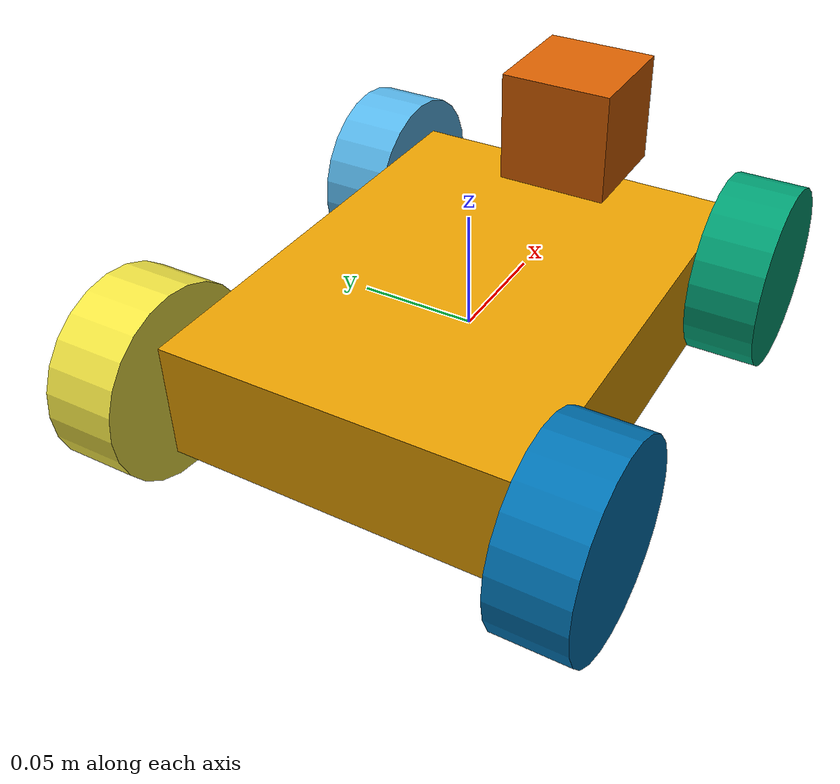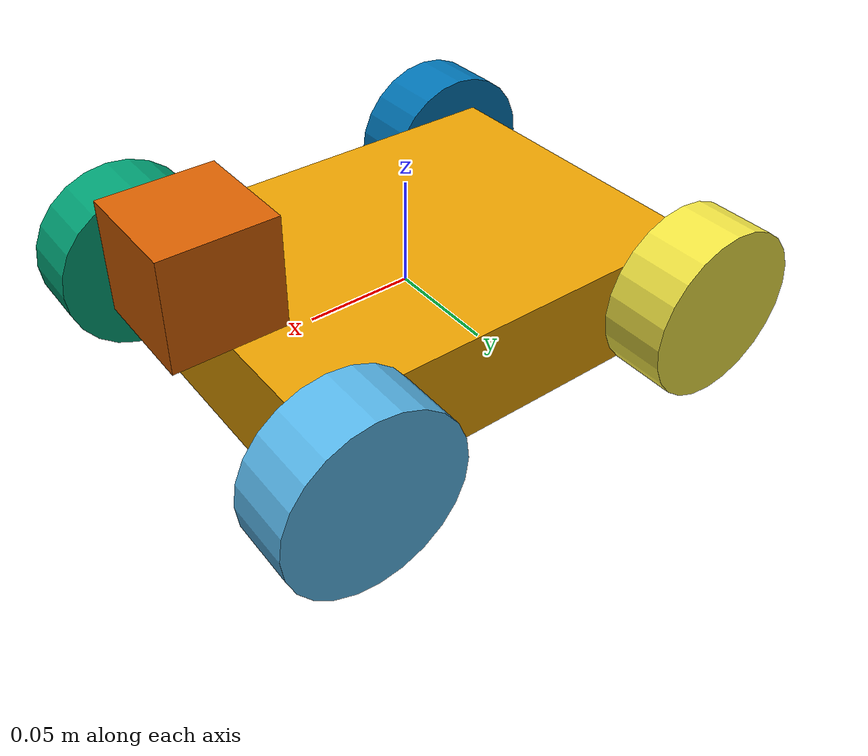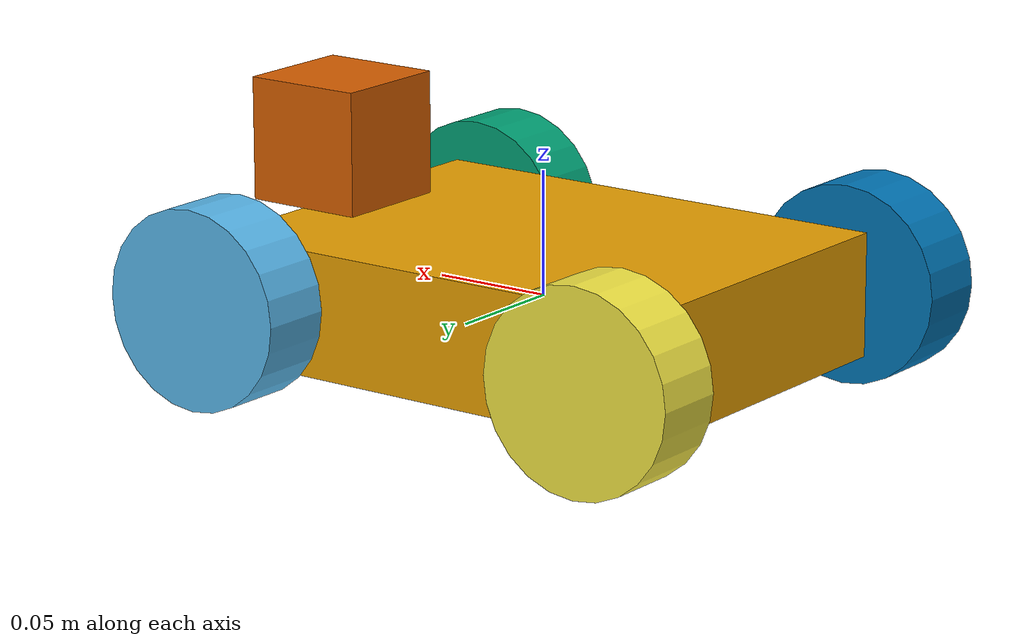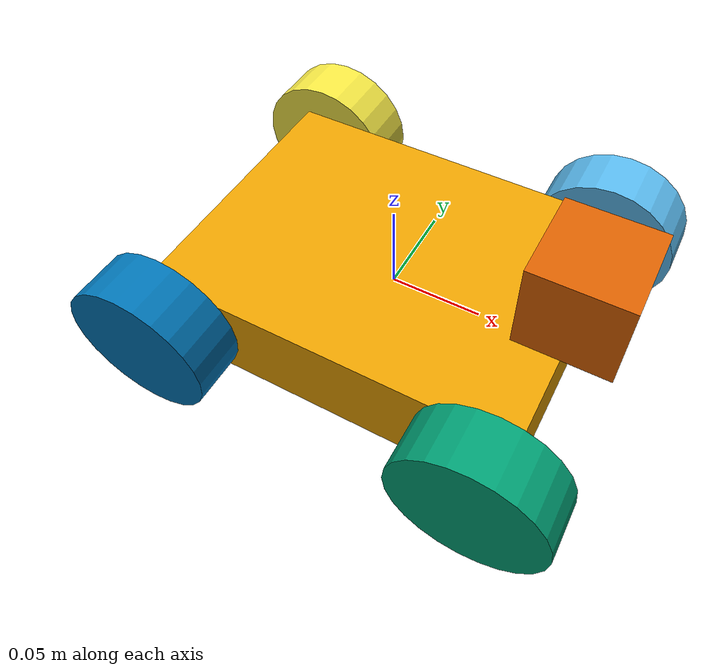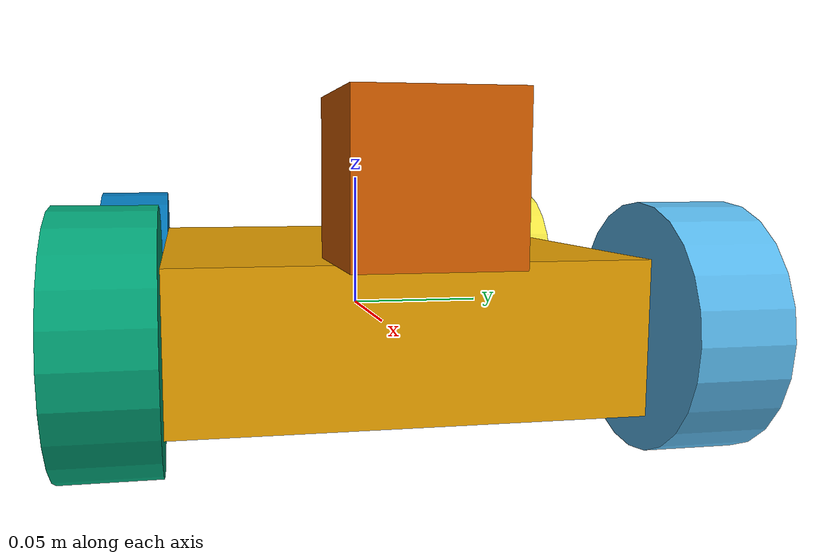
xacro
<?xml version='1.0'?>

<robot name="robot" xmlns:xacro="http://www.ros.org/wiki/xacro">

  <xacro:property name="chassis_width" value="0.15"/>
  <xacro:property name="chassis_length" value="0.2"/>
  <xacro:property name="chassis_height" value="0.05"/>
  <xacro:property name="chassis_mass" value="0.5"/>
  <xacro:property name="wheel_radius" value="0.04"/>
  <xacro:property name="wheel_width" value="0.03"/>
  <xacro:property name="wheel_mass" value="0.1"/>
  <xacro:property name="axle2axle_dist" value="0.18"/>
  <xacro:property name="camera_link" value="0.05" /> <!-- Size of square 'camera' box -->

  <xacro:include filename="$(find enph353_ros_lab)/urdf/macros.xacro" />

  <link name='chassis'>

    <xacro:box_inertial name="chassis" m="${chassis_mass}" x="${chassis_length}" y="${chassis_width}" z="${chassis_height}"/>

    <collision name='chassis_collision'>
      <geometry>
        <box size="${chassis_length} ${chassis_width} ${chassis_height}"/>
      </geometry>
    </collision>

    <visual name='chassis_visual'>
      <origin xyz="0 0 0" rpy=" 0 0 0"/>
      <geometry>
        <box size="${chassis_length} ${chassis_width} ${chassis_height}"/>
      </geometry>
    </visual>

  </link>

  <link name='wheel_fr'>

    <xacro:cylinder_inertial name="wheel_fr" m="${wheel_mass}" r="${wheel_radius}" h="${wheel_width}"/>

   <collision>
	<geometry>
		<cylinder length="${wheel_width}" radius="${wheel_radius}"/>
	</geometry>
   </collision>

    <visual name='wheel_fr visual'>
        <origin xyz="0 0 0" rpy="0 0 0"/>
	<geometry>
		<cylinder length="${wheel_width}" radius="${wheel_radius}"/>
	</geometry>
   </visual>

  </link>

  <joint name="fr_joint" type="continuous">
	<origin xyz="0.09 0.09 0.0025" rpy="1.5708 0 0"/>
	<parent link="chassis"/>
	<child link="wheel_fr"/>
	<axis xyz=" 0 0 1"/>
  </joint>

  <link name='wheel_fl'>

    <xacro:cylinder_inertial name="wheel_fl" m="${wheel_mass}" r="${wheel_radius}" h="${wheel_width}"/>

   <collision>
	<geometry>
		<cylinder length="${wheel_width}" radius="${wheel_radius}"/>
	</geometry>
   </collision>

    <visual name='wheel_fl visual'>
        <origin xyz="0 0 0" rpy="0 0 0"/>
	<geometry>
		<cylinder length="${wheel_width}" radius="${wheel_radius}"/>
	</geometry>
   </visual>

  </link>

  <joint name="fl_joint" type="continuous">
	<origin xyz="0.09 -0.09 0.0025" rpy="-1.5708 0 0"/>
	<parent link="chassis"/>
	<child link="wheel_fl"/>
	<axis xyz=" 0 0 -1"/>
  </joint>

  <link name='wheel_br'>

    <xacro:cylinder_inertial name="wheel_br" m="${wheel_mass}" r="${wheel_radius}" h="${wheel_width}"/>

   <collision>
	<geometry>
		<cylinder length="${wheel_width}" radius="${wheel_radius}"/>
	</geometry>
   </collision>

    <visual name='wheel_br visual'>
        <origin xyz="0 0 0" rpy="0 0 0"/>
	<geometry>
		<cylinder length="${wheel_width}" radius="${wheel_radius}"/>
	</geometry>
   </visual>

  </link>

  <joint name="br_joint" type="continuous">
	<origin xyz="-0.09 0.09 0.0025" rpy="1.5708 0 0"/>
	<parent link="chassis"/>
	<child link="wheel_br"/>
	<axis xyz=" 0 0 1"/>
  </joint>

  <link name='wheel_bl'>

    <xacro:cylinder_inertial name="wheel_bl" m="${wheel_mass}" r="${wheel_radius}" h="${wheel_width}"/>

   <collision>
	<geometry>
		<cylinder length="${wheel_width}" radius="${wheel_radius}"/>
	</geometry>
   </collision>

    <visual name='wheel_bl visual'>
        <origin xyz="0 0 0" rpy="0 0 0"/>
	<geometry>
		<cylinder length="${wheel_width}" radius="${wheel_radius}"/>
	</geometry>
   </visual>

  </link>

  <joint name="bl_joint" type="continuous">
	<origin xyz="-0.09 -0.09 0.0025" rpy="-1.5708 0 0"/>
	<parent link="chassis"/>
	<child link="wheel_bl"/>
	<axis xyz=" 0 0 -1"/>
  </joint>

<link name="camera_link">
  <collision>
      <origin xyz="0 0 0" rpy="0 0 0"/>
      <geometry>
    <box size="${camera_link} ${camera_link} ${camera_link}"/>
      </geometry>
  </collision>

    <visual>
      <origin xyz="0 0 0" rpy="0 0 0"/>
      <geometry>
    <box size="${camera_link} ${camera_link} ${camera_link}"/>
      </geometry>
    </visual>

    <inertial>
      <mass value="1e-5" />
      <origin xyz="0 0 0" rpy="0 0 0"/>
      <inertia ixx="1e-6" ixy="0" ixz="0" iyy="1e-6" iyz="0" izz="1e-6" />
    </inertial>
</link>

  <joint name="camera_joint" type="fixed">
    <axis xyz="0 1 0" />
    <origin xyz="0.1 0 0.05" rpy="0 0 0"/>
    <parent link="chassis"/>
    <child link="camera_link"/>
  </joint>

<gazebo reference="camera_link">
	<sensor type="camera" name="camera1">
	 <update_rate> 30.0 </update_rate>
      	 <camera name="head">
        	<horizontal_fov>1.3962634</horizontal_fov>
        	<image>
          		<width>800</width>
          		<height>800</height>
          		<format>R8G8B8</format>
        	</image>
        	<clip>
          		<near>0.02</near>
          		<far>300</far>
        	</clip>
        	<noise>
         		<type>gaussian</type>
          <!-- Noise is sampled independently per pixel on each frame.
               That pixel's noise value is added to each of its color
               channels, which at that point lie in the range [0,1]. -->
          		<mean>0.0</mean>
          		<stddev>0.007</stddev>
        	</noise>
      	</camera>
       <plugin name="camera_controller" filename="libgazebo_ros_camera.so">
        <alwaysOn>true</alwaysOn>
        <updateRate>0.0</updateRate>
        <cameraName>rrbot/camera1</cameraName>
        <imageTopicName>image_raw</imageTopicName>
        <cameraInfoTopicName>camera_info</cameraInfoTopicName>
        <frameName>camera_link</frameName>
        <hackBaseline>0.07</hackBaseline>
        <distortionK1>0.0</distortionK1>
        <distortionK2>0.0</distortionK2>
        <distortionK3>0.0</distortionK3>
        <distortionT1>0.0</distortionT1>
        <distortionT2>0.0</distortionT2>
      </plugin>
    </sensor>

</gazebo>

<gazebo>
  <plugin name="skid_steer_drive_controller" filename="libgazebo_ros_skid_steer_drive.so">
    <updateRate>100.0</updateRate>
    <robotNamespace>/</robotNamespace>
    <leftFrontJoint>fl_joint</leftFrontJoint>
    <rightFrontJoint>fr_joint</rightFrontJoint>
    <leftRearJoint>bl_joint</leftRearJoint>
    <rightRearJoint>br_joint</rightRearJoint>
    <wheelSeparation>0.15</wheelSeparation>
    <wheelDiameter>0.08</wheelDiameter>
    <robotBaseFrame>chassis</robotBaseFrame>
    <torque>20</torque>
    <topicName>cmd_vel</topicName>
    <broadcastTF>false</broadcastTF>
  </plugin>
</gazebo>

</robot>
